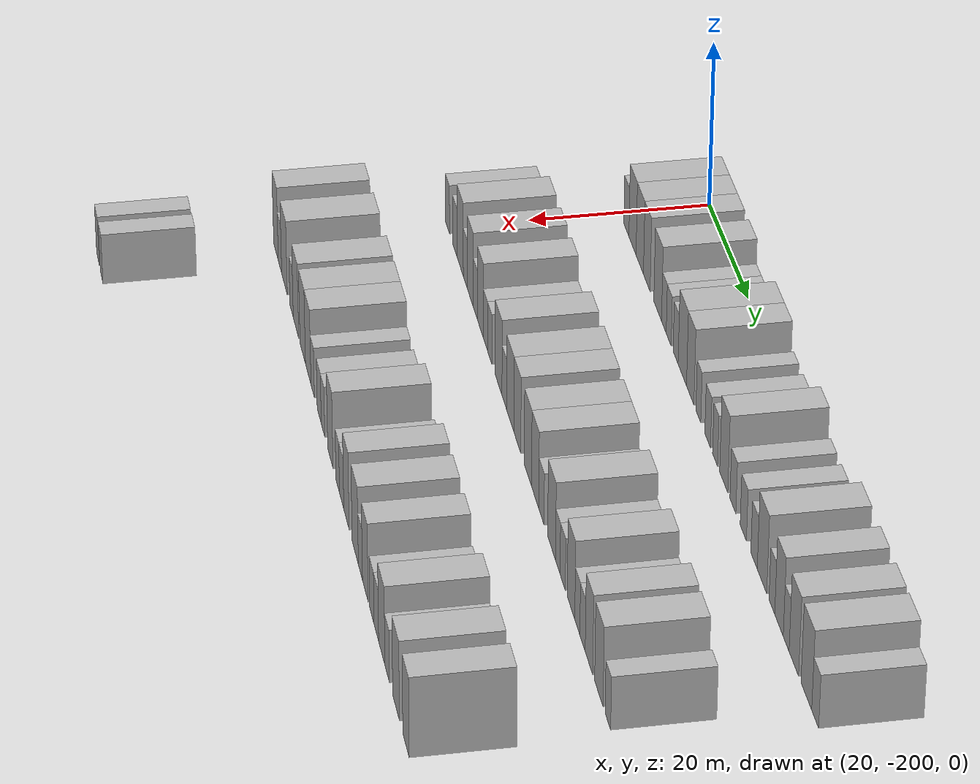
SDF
<sdf version="1.6">
 <world name="default">
  <model name="building_38">
   <static>1</static>
   <pose>25.0000 -196.1749 0 0.000000 0.000000 0.000000</pose>
   <link name="link">
    <pose>0 0 3.00 0 0 0</pose>
    <collision name="collision"><geometry><box><size>10.0000 2.8677 6.0000</size></box></geometry></collision>
    <visual name="visual">
     <cast_shadows>0</cast_shadows>
     <geometry><box><size>10.0000 2.8677 6.0000</size></box></geometry>
     <material>
      <script>
       <uri>model://HANNAS_wall/materials/scripts</uri>
       <uri>model://HANNAS_wall/materials/textures</uri>
       <name>vrc/HANNAS_wall</name>
      </script>
     </material>
    </visual>
   </link>
  </model>
  <model name="building_39">
   <static>1</static>
   <pose>25.0000 -192.7549 0 0.000000 0.000000 0.000000</pose>
   <link name="link">
    <pose>0 0 4.50 0 0 0</pose>
    <collision name="collision"><geometry><box><size>10.0000 3.9723 9.0000</size></box></geometry></collision>
    <visual name="visual">
     <cast_shadows>0</cast_shadows>
     <geometry><box><size>10.0000 3.9723 9.0000</size></box></geometry>
     <material>
      <script>
       <uri>model://HANNAS_wall/materials/scripts</uri>
       <uri>model://HANNAS_wall/materials/textures</uri>
       <name>vrc/HANNAS_wall</name>
      </script>
     </material>
    </visual>
   </link>
  </model>
  <model name="building_40">
   <static>1</static>
   <pose>25.0000 -188.7451 0 0.000000 0.000000 0.000000</pose>
   <link name="link">
    <pose>0 0 4.50 0 0 0</pose>
    <collision name="collision"><geometry><box><size>10.0000 4.0472 9.0000</size></box></geometry></collision>
    <visual name="visual">
     <cast_shadows>0</cast_shadows>
     <geometry><box><size>10.0000 4.0472 9.0000</size></box></geometry>
     <material>
      <script>
       <uri>model://HANNAS_wall/materials/scripts</uri>
       <uri>model://HANNAS_wall/materials/textures</uri>
       <name>vrc/HANNAS_wall</name>
      </script>
     </material>
    </visual>
   </link>
  </model>
  <model name="building_41">
   <static>1</static>
   <pose>25.0000 -184.9194 0 0.000000 0.000000 0.000000</pose>
   <link name="link">
    <pose>0 0 4.50 0 0 0</pose>
    <collision name="collision"><geometry><box><size>10.0000 3.6041 9.0000</size></box></geometry></collision>
    <visual name="visual">
     <cast_shadows>0</cast_shadows>
     <geometry><box><size>10.0000 3.6041 9.0000</size></box></geometry>
     <material>
      <script>
       <uri>model://HANNAS_wall/materials/scripts</uri>
       <uri>model://HANNAS_wall/materials/textures</uri>
       <name>vrc/HANNAS_wall</name>
      </script>
     </material>
    </visual>
   </link>
  </model>
  <model name="building_42">
   <static>1</static>
   <pose>25.0000 -179.0728 0 0.000000 0.000000 0.000000</pose>
   <link name="link">
    <pose>0 0 4.50 0 0 0</pose>
    <collision name="collision"><geometry><box><size>10.0000 4.0892 9.0000</size></box></geometry></collision>
    <visual name="visual">
     <cast_shadows>0</cast_shadows>
     <geometry><box><size>10.0000 4.0892 9.0000</size></box></geometry>
     <material>
      <script>
       <uri>model://HANNAS_wall/materials/scripts</uri>
       <uri>model://HANNAS_wall/materials/textures</uri>
       <name>vrc/HANNAS_wall</name>
      </script>
     </material>
    </visual>
   </link>
  </model>
  <model name="building_43">
   <static>1</static>
   <pose>25.0000 -175.7907 0 0.000000 0.000000 0.000000</pose>
   <link name="link">
    <pose>0 0 3.00 0 0 0</pose>
    <collision name="collision"><geometry><box><size>10.0000 2.4751 6.0000</size></box></geometry></collision>
    <visual name="visual">
     <cast_shadows>0</cast_shadows>
     <geometry><box><size>10.0000 2.4751 6.0000</size></box></geometry>
     <material>
      <script>
       <uri>model://HANNAS_wall/materials/scripts</uri>
       <uri>model://HANNAS_wall/materials/textures</uri>
       <name>vrc/HANNAS_wall</name>
      </script>
     </material>
    </visual>
   </link>
  </model>
  <model name="building_44">
   <static>1</static>
   <pose>25.0000 -173.2570 0 0.000000 0.000000 0.000000</pose>
   <link name="link">
    <pose>0 0 3.00 0 0 0</pose>
    <collision name="collision"><geometry><box><size>10.0000 2.5922 6.0000</size></box></geometry></collision>
    <visual name="visual">
     <cast_shadows>0</cast_shadows>
     <geometry><box><size>10.0000 2.5922 6.0000</size></box></geometry>
     <material>
      <script>
       <uri>model://HANNAS_wall/materials/scripts</uri>
       <uri>model://HANNAS_wall/materials/textures</uri>
       <name>vrc/HANNAS_wall</name>
      </script>
     </material>
    </visual>
   </link>
  </model>
  <model name="building_45">
   <static>1</static>
   <pose>25.0000 -169.6675 0 0.000000 0.000000 0.000000</pose>
   <link name="link">
    <pose>0 0 3.00 0 0 0</pose>
    <collision name="collision"><geometry><box><size>10.0000 2.5868 6.0000</size></box></geometry></collision>
    <visual name="visual">
     <cast_shadows>0</cast_shadows>
     <geometry><box><size>10.0000 2.5868 6.0000</size></box></geometry>
     <material>
      <script>
       <uri>model://HANNAS_wall/materials/scripts</uri>
       <uri>model://HANNAS_wall/materials/textures</uri>
       <name>vrc/HANNAS_wall</name>
      </script>
     </material>
    </visual>
   </link>
  </model>
  <model name="building_46">
   <static>1</static>
   <pose>25.0000 -166.2301 0 0.000000 0.000000 0.000000</pose>
   <link name="link">
    <pose>0 0 4.50 0 0 0</pose>
    <collision name="collision"><geometry><box><size>10.0000 4.2879 9.0000</size></box></geometry></collision>
    <visual name="visual">
     <cast_shadows>0</cast_shadows>
     <geometry><box><size>10.0000 4.2879 9.0000</size></box></geometry>
     <material>
      <script>
       <uri>model://HANNAS_wall/materials/scripts</uri>
       <uri>model://HANNAS_wall/materials/textures</uri>
       <name>vrc/HANNAS_wall</name>
      </script>
     </material>
    </visual>
   </link>
  </model>
  <model name="building_47">
   <static>1</static>
   <pose>25.0000 -162.2319 0 0.000000 0.000000 0.000000</pose>
   <link name="link">
    <pose>0 0 4.50 0 0 0</pose>
    <collision name="collision"><geometry><box><size>10.0000 3.7085 9.0000</size></box></geometry></collision>
    <visual name="visual">
     <cast_shadows>0</cast_shadows>
     <geometry><box><size>10.0000 3.7085 9.0000</size></box></geometry>
     <material>
      <script>
       <uri>model://HANNAS_wall/materials/scripts</uri>
       <uri>model://HANNAS_wall/materials/textures</uri>
       <name>vrc/HANNAS_wall</name>
      </script>
     </material>
    </visual>
   </link>
  </model>
  <model name="building_48">
   <static>1</static>
   <pose>25.0000 -158.1756 0 0.000000 0.000000 0.000000</pose>
   <link name="link">
    <pose>0 0 3.00 0 0 0</pose>
    <collision name="collision"><geometry><box><size>10.0000 2.4042 6.0000</size></box></geometry></collision>
    <visual name="visual">
     <cast_shadows>0</cast_shadows>
     <geometry><box><size>10.0000 2.4042 6.0000</size></box></geometry>
     <material>
      <script>
       <uri>model://HANNAS_wall/materials/scripts</uri>
       <uri>model://HANNAS_wall/materials/textures</uri>
       <name>vrc/HANNAS_wall</name>
      </script>
     </material>
    </visual>
   </link>
  </model>
  <model name="building_49">
   <static>1</static>
   <pose>25.0000 -153.5953 0 0.000000 0.000000 0.000000</pose>
   <link name="link">
    <pose>0 0 3.00 0 0 0</pose>
    <collision name="collision"><geometry><box><size>10.0000 2.7563 6.0000</size></box></geometry></collision>
    <visual name="visual">
     <cast_shadows>0</cast_shadows>
     <geometry><box><size>10.0000 2.7563 6.0000</size></box></geometry>
     <material>
      <script>
       <uri>model://HANNAS_wall/materials/scripts</uri>
       <uri>model://HANNAS_wall/materials/textures</uri>
       <name>vrc/HANNAS_wall</name>
      </script>
     </material>
    </visual>
   </link>
  </model>
  <model name="building_50">
   <static>1</static>
   <pose>25.0000 -149.9936 0 0.000000 0.000000 0.000000</pose>
   <link name="link">
    <pose>0 0 3.00 0 0 0</pose>
    <collision name="collision"><geometry><box><size>10.0000 2.4472 6.0000</size></box></geometry></collision>
    <visual name="visual">
     <cast_shadows>0</cast_shadows>
     <geometry><box><size>10.0000 2.4472 6.0000</size></box></geometry>
     <material>
      <script>
       <uri>model://HANNAS_wall/materials/scripts</uri>
       <uri>model://HANNAS_wall/materials/textures</uri>
       <name>vrc/HANNAS_wall</name>
      </script>
     </material>
    </visual>
   </link>
  </model>
  <model name="building_51">
   <static>1</static>
   <pose>25.0000 -145.8322 0 0.000000 0.000000 0.000000</pose>
   <link name="link">
    <pose>0 0 4.50 0 0 0</pose>
    <collision name="collision"><geometry><box><size>10.0000 3.8758 9.0000</size></box></geometry></collision>
    <visual name="visual">
     <cast_shadows>0</cast_shadows>
     <geometry><box><size>10.0000 3.8758 9.0000</size></box></geometry>
     <material>
      <script>
       <uri>model://HANNAS_wall/materials/scripts</uri>
       <uri>model://HANNAS_wall/materials/textures</uri>
       <name>vrc/HANNAS_wall</name>
      </script>
     </material>
    </visual>
   </link>
  </model>
  <model name="building_52">
   <static>1</static>
   <pose>25.0000 -141.5066 0 0.000000 0.000000 0.000000</pose>
   <link name="link">
    <pose>0 0 3.00 0 0 0</pose>
    <collision name="collision"><geometry><box><size>10.0000 2.7752 6.0000</size></box></geometry></collision>
    <visual name="visual">
     <cast_shadows>0</cast_shadows>
     <geometry><box><size>10.0000 2.7752 6.0000</size></box></geometry>
     <material>
      <script>
       <uri>model://HANNAS_wall/materials/scripts</uri>
       <uri>model://HANNAS_wall/materials/textures</uri>
       <name>vrc/HANNAS_wall</name>
      </script>
     </material>
    </visual>
   </link>
  </model>
  <model name="building_53">
   <static>1</static>
   <pose>25.0000 -136.6721 0 0.000000 0.000000 0.000000</pose>
   <link name="link">
    <pose>0 0 3.00 0 0 0</pose>
    <collision name="collision"><geometry><box><size>10.0000 2.8939 6.0000</size></box></geometry></collision>
    <visual name="visual">
     <cast_shadows>0</cast_shadows>
     <geometry><box><size>10.0000 2.8939 6.0000</size></box></geometry>
     <material>
      <script>
       <uri>model://HANNAS_wall/materials/scripts</uri>
       <uri>model://HANNAS_wall/materials/textures</uri>
       <name>vrc/HANNAS_wall</name>
      </script>
     </material>
    </visual>
   </link>
  </model>
  <model name="building_54">
   <static>1</static>
   <pose>25.0000 -131.7650 0 0.000000 0.000000 0.000000</pose>
   <link name="link">
    <pose>0 0 3.00 0 0 0</pose>
    <collision name="collision"><geometry><box><size>10.0000 2.9203 6.0000</size></box></geometry></collision>
    <visual name="visual">
     <cast_shadows>0</cast_shadows>
     <geometry><box><size>10.0000 2.9203 6.0000</size></box></geometry>
     <material>
      <script>
       <uri>model://HANNAS_wall/materials/scripts</uri>
       <uri>model://HANNAS_wall/materials/textures</uri>
       <name>vrc/HANNAS_wall</name>
      </script>
     </material>
    </visual>
   </link>
  </model>
  <model name="building_55">
   <static>1</static>
   <pose>25.0000 -128.1804 0 0.000000 0.000000 0.000000</pose>
   <link name="link">
    <pose>0 0 4.50 0 0 0</pose>
    <collision name="collision"><geometry><box><size>10.0000 4.2487 9.0000</size></box></geometry></collision>
    <visual name="visual">
     <cast_shadows>0</cast_shadows>
     <geometry><box><size>10.0000 4.2487 9.0000</size></box></geometry>
     <material>
      <script>
       <uri>model://HANNAS_wall/materials/scripts</uri>
       <uri>model://HANNAS_wall/materials/textures</uri>
       <name>vrc/HANNAS_wall</name>
      </script>
     </material>
    </visual>
   </link>
  </model>
  <model name="building_56">
   <static>1</static>
   <pose>25.0000 -123.7981 0 0.000000 0.000000 0.000000</pose>
   <link name="link">
    <pose>0 0 3.00 0 0 0</pose>
    <collision name="collision"><geometry><box><size>10.0000 2.5161 6.0000</size></box></geometry></collision>
    <visual name="visual">
     <cast_shadows>0</cast_shadows>
     <geometry><box><size>10.0000 2.5161 6.0000</size></box></geometry>
     <material>
      <script>
       <uri>model://HANNAS_wall/materials/scripts</uri>
       <uri>model://HANNAS_wall/materials/textures</uri>
       <name>vrc/HANNAS_wall</name>
      </script>
     </material>
    </visual>
   </link>
  </model>
  <model name="building_57">
   <static>1</static>
   <pose>25.0000 -120.6782 0 0.000000 0.000000 0.000000</pose>
   <link name="link">
    <pose>0 0 4.50 0 0 0</pose>
    <collision name="collision"><geometry><box><size>10.0000 3.7236 9.0000</size></box></geometry></collision>
    <visual name="visual">
     <cast_shadows>0</cast_shadows>
     <geometry><box><size>10.0000 3.7236 9.0000</size></box></geometry>
     <material>
      <script>
       <uri>model://HANNAS_wall/materials/scripts</uri>
       <uri>model://HANNAS_wall/materials/textures</uri>
       <name>vrc/HANNAS_wall</name>
      </script>
     </material>
    </visual>
   </link>
  </model>
  <model name="building_58">
   <static>1</static>
   <pose>25.0000 -117.5610 0 0.000000 0.000000 0.000000</pose>
   <link name="link">
    <pose>0 0 3.00 0 0 0</pose>
    <collision name="collision"><geometry><box><size>10.0000 2.5109 6.0000</size></box></geometry></collision>
    <visual name="visual">
     <cast_shadows>0</cast_shadows>
     <geometry><box><size>10.0000 2.5109 6.0000</size></box></geometry>
     <material>
      <script>
       <uri>model://HANNAS_wall/materials/scripts</uri>
       <uri>model://HANNAS_wall/materials/textures</uri>
       <name>vrc/HANNAS_wall</name>
      </script>
     </material>
    </visual>
   </link>
  </model>
  <model name="building_59">
   <static>1</static>
   <pose>25.0000 -114.2833 0 0.000000 0.000000 0.000000</pose>
   <link name="link">
    <pose>0 0 4.50 0 0 0</pose>
    <collision name="collision"><geometry><box><size>10.0000 4.0446 9.0000</size></box></geometry></collision>
    <visual name="visual">
     <cast_shadows>0</cast_shadows>
     <geometry><box><size>10.0000 4.0446 9.0000</size></box></geometry>
     <material>
      <script>
       <uri>model://HANNAS_wall/materials/scripts</uri>
       <uri>model://HANNAS_wall/materials/textures</uri>
       <name>vrc/HANNAS_wall</name>
      </script>
     </material>
    </visual>
   </link>
  </model>
  <model name="building_60">
   <static>1</static>
   <pose>25.0000 -109.0152 0 0.000000 0.000000 0.000000</pose>
   <link name="link">
    <pose>0 0 4.50 0 0 0</pose>
    <collision name="collision"><geometry><box><size>10.0000 4.4915 9.0000</size></box></geometry></collision>
    <visual name="visual">
     <cast_shadows>0</cast_shadows>
     <geometry><box><size>10.0000 4.4915 9.0000</size></box></geometry>
     <material>
      <script>
       <uri>model://HANNAS_wall/materials/scripts</uri>
       <uri>model://HANNAS_wall/materials/textures</uri>
       <name>vrc/HANNAS_wall</name>
      </script>
     </material>
    </visual>
   </link>
  </model>
  <model name="building_61">
   <static>1</static>
   <pose>25.0000 -105.3394 0 0.000000 0.000000 0.000000</pose>
   <link name="link">
    <pose>0 0 3.00 0 0 0</pose>
    <collision name="collision"><geometry><box><size>10.0000 2.8602 6.0000</size></box></geometry></collision>
    <visual name="visual">
     <cast_shadows>0</cast_shadows>
     <geometry><box><size>10.0000 2.8602 6.0000</size></box></geometry>
     <material>
      <script>
       <uri>model://HANNAS_wall/materials/scripts</uri>
       <uri>model://HANNAS_wall/materials/textures</uri>
       <name>vrc/HANNAS_wall</name>
      </script>
     </material>
    </visual>
   </link>
  </model>
  <model name="building_211">
   <static>1</static>
   <pose>44.0000 -199.8875 0 0.000000 0.000000 0.000000</pose>
   <link name="link">
    <pose>0 0 3.00 0 0 0</pose>
    <collision name="collision"><geometry><box><size>10.0000 2.6153 6.0000</size></box></geometry></collision>
    <visual name="visual">
     <cast_shadows>0</cast_shadows>
     <geometry><box><size>10.0000 2.6153 6.0000</size></box></geometry>
     <material>
      <script>
       <uri>model://HANNAS_wall/materials/scripts</uri>
       <uri>model://HANNAS_wall/materials/textures</uri>
       <name>vrc/HANNAS_wall</name>
      </script>
     </material>
    </visual>
   </link>
  </model>
  <model name="building_212">
   <static>1</static>
   <pose>44.0000 -195.1060 0 0.000000 0.000000 0.000000</pose>
   <link name="link">
    <pose>0 0 3.00 0 0 0</pose>
    <collision name="collision"><geometry><box><size>10.0000 2.9477 6.0000</size></box></geometry></collision>
    <visual name="visual">
     <cast_shadows>0</cast_shadows>
     <geometry><box><size>10.0000 2.9477 6.0000</size></box></geometry>
     <material>
      <script>
       <uri>model://HANNAS_wall/materials/scripts</uri>
       <uri>model://HANNAS_wall/materials/textures</uri>
       <name>vrc/HANNAS_wall</name>
      </script>
     </material>
    </visual>
   </link>
  </model>
  <model name="building_213">
   <static>1</static>
   <pose>44.0000 -191.5765 0 0.000000 0.000000 0.000000</pose>
   <link name="link">
    <pose>0 0 4.50 0 0 0</pose>
    <collision name="collision"><geometry><box><size>10.0000 4.1114 9.0000</size></box></geometry></collision>
    <visual name="visual">
     <cast_shadows>0</cast_shadows>
     <geometry><box><size>10.0000 4.1114 9.0000</size></box></geometry>
     <material>
      <script>
       <uri>model://HANNAS_wall/materials/scripts</uri>
       <uri>model://HANNAS_wall/materials/textures</uri>
       <name>vrc/HANNAS_wall</name>
      </script>
     </material>
    </visual>
   </link>
  </model>
  <model name="building_214">
   <static>1</static>
   <pose>44.0000 -188.2225 0 0.000000 0.000000 0.000000</pose>
   <link name="link">
    <pose>0 0 3.00 0 0 0</pose>
    <collision name="collision"><geometry><box><size>10.0000 2.5965 6.0000</size></box></geometry></collision>
    <visual name="visual">
     <cast_shadows>0</cast_shadows>
     <geometry><box><size>10.0000 2.5965 6.0000</size></box></geometry>
     <material>
      <script>
       <uri>model://HANNAS_wall/materials/scripts</uri>
       <uri>model://HANNAS_wall/materials/textures</uri>
       <name>vrc/HANNAS_wall</name>
      </script>
     </material>
    </visual>
   </link>
  </model>
  <model name="building_215">
   <static>1</static>
   <pose>44.0000 -185.0494 0 0.000000 0.000000 0.000000</pose>
   <link name="link">
    <pose>0 0 4.50 0 0 0</pose>
    <collision name="collision"><geometry><box><size>10.0000 3.7498 9.0000</size></box></geometry></collision>
    <visual name="visual">
     <cast_shadows>0</cast_shadows>
     <geometry><box><size>10.0000 3.7498 9.0000</size></box></geometry>
     <material>
      <script>
       <uri>model://HANNAS_wall/materials/scripts</uri>
       <uri>model://HANNAS_wall/materials/textures</uri>
       <name>vrc/HANNAS_wall</name>
      </script>
     </material>
    </visual>
   </link>
  </model>
  <model name="building_216">
   <static>1</static>
   <pose>44.0000 -181.8556 0 0.000000 0.000000 0.000000</pose>
   <link name="link">
    <pose>0 0 3.00 0 0 0</pose>
    <collision name="collision"><geometry><box><size>10.0000 2.6378 6.0000</size></box></geometry></collision>
    <visual name="visual">
     <cast_shadows>0</cast_shadows>
     <geometry><box><size>10.0000 2.6378 6.0000</size></box></geometry>
     <material>
      <script>
       <uri>model://HANNAS_wall/materials/scripts</uri>
       <uri>model://HANNAS_wall/materials/textures</uri>
       <name>vrc/HANNAS_wall</name>
      </script>
     </material>
    </visual>
   </link>
  </model>
  <model name="building_217">
   <static>1</static>
   <pose>44.0000 -178.6757 0 0.000000 0.000000 0.000000</pose>
   <link name="link">
    <pose>0 0 4.50 0 0 0</pose>
    <collision name="collision"><geometry><box><size>10.0000 3.7222 9.0000</size></box></geometry></collision>
    <visual name="visual">
     <cast_shadows>0</cast_shadows>
     <geometry><box><size>10.0000 3.7222 9.0000</size></box></geometry>
     <material>
      <script>
       <uri>model://HANNAS_wall/materials/scripts</uri>
       <uri>model://HANNAS_wall/materials/textures</uri>
       <name>vrc/HANNAS_wall</name>
      </script>
     </material>
    </visual>
   </link>
  </model>
  <model name="building_218">
   <static>1</static>
   <pose>44.0000 -175.5180 0 0.000000 0.000000 0.000000</pose>
   <link name="link">
    <pose>0 0 3.00 0 0 0</pose>
    <collision name="collision"><geometry><box><size>10.0000 2.5931 6.0000</size></box></geometry></collision>
    <visual name="visual">
     <cast_shadows>0</cast_shadows>
     <geometry><box><size>10.0000 2.5931 6.0000</size></box></geometry>
     <material>
      <script>
       <uri>model://HANNAS_wall/materials/scripts</uri>
       <uri>model://HANNAS_wall/materials/textures</uri>
       <name>vrc/HANNAS_wall</name>
      </script>
     </material>
    </visual>
   </link>
  </model>
  <model name="building_219">
   <static>1</static>
   <pose>44.0000 -172.8881 0 0.000000 0.000000 0.000000</pose>
   <link name="link">
    <pose>0 0 3.00 0 0 0</pose>
    <collision name="collision"><geometry><box><size>10.0000 2.6668 6.0000</size></box></geometry></collision>
    <visual name="visual">
     <cast_shadows>0</cast_shadows>
     <geometry><box><size>10.0000 2.6668 6.0000</size></box></geometry>
     <material>
      <script>
       <uri>model://HANNAS_wall/materials/scripts</uri>
       <uri>model://HANNAS_wall/materials/textures</uri>
       <name>vrc/HANNAS_wall</name>
      </script>
     </material>
    </visual>
   </link>
  </model>
  <model name="building_220">
   <static>1</static>
   <pose>44.0000 -167.5113 0 0.000000 0.000000 0.000000</pose>
   <link name="link">
    <pose>0 0 4.50 0 0 0</pose>
    <collision name="collision"><geometry><box><size>10.0000 4.0867 9.0000</size></box></geometry></collision>
    <visual name="visual">
     <cast_shadows>0</cast_shadows>
     <geometry><box><size>10.0000 4.0867 9.0000</size></box></geometry>
     <material>
      <script>
       <uri>model://HANNAS_wall/materials/scripts</uri>
       <uri>model://HANNAS_wall/materials/textures</uri>
       <name>vrc/HANNAS_wall</name>
      </script>
     </material>
    </visual>
   </link>
  </model>
  <model name="building_221">
   <static>1</static>
   <pose>44.0000 -164.0700 0 0.000000 0.000000 0.000000</pose>
   <link name="link">
    <pose>0 0 3.00 0 0 0</pose>
    <collision name="collision"><geometry><box><size>10.0000 2.7959 6.0000</size></box></geometry></collision>
    <visual name="visual">
     <cast_shadows>0</cast_shadows>
     <geometry><box><size>10.0000 2.7959 6.0000</size></box></geometry>
     <material>
      <script>
       <uri>model://HANNAS_wall/materials/scripts</uri>
       <uri>model://HANNAS_wall/materials/textures</uri>
       <name>vrc/HANNAS_wall</name>
      </script>
     </material>
    </visual>
   </link>
  </model>
  <model name="building_222">
   <static>1</static>
   <pose>44.0000 -160.5124 0 0.000000 0.000000 0.000000</pose>
   <link name="link">
    <pose>0 0 4.50 0 0 0</pose>
    <collision name="collision"><geometry><box><size>10.0000 4.3194 9.0000</size></box></geometry></collision>
    <visual name="visual">
     <cast_shadows>0</cast_shadows>
     <geometry><box><size>10.0000 4.3194 9.0000</size></box></geometry>
     <material>
      <script>
       <uri>model://HANNAS_wall/materials/scripts</uri>
       <uri>model://HANNAS_wall/materials/textures</uri>
       <name>vrc/HANNAS_wall</name>
      </script>
     </material>
    </visual>
   </link>
  </model>
  <model name="building_223">
   <static>1</static>
   <pose>44.0000 -156.3824 0 0.000000 0.000000 0.000000</pose>
   <link name="link">
    <pose>0 0 4.50 0 0 0</pose>
    <collision name="collision"><geometry><box><size>10.0000 3.9405 9.0000</size></box></geometry></collision>
    <visual name="visual">
     <cast_shadows>0</cast_shadows>
     <geometry><box><size>10.0000 3.9405 9.0000</size></box></geometry>
     <material>
      <script>
       <uri>model://HANNAS_wall/materials/scripts</uri>
       <uri>model://HANNAS_wall/materials/textures</uri>
       <name>vrc/HANNAS_wall</name>
      </script>
     </material>
    </visual>
   </link>
  </model>
  <model name="building_224">
   <static>1</static>
   <pose>44.0000 -150.3440 0 0.000000 0.000000 0.000000</pose>
   <link name="link">
    <pose>0 0 4.50 0 0 0</pose>
    <collision name="collision"><geometry><box><size>10.0000 4.1362 9.0000</size></box></geometry></collision>
    <visual name="visual">
     <cast_shadows>0</cast_shadows>
     <geometry><box><size>10.0000 4.1362 9.0000</size></box></geometry>
     <material>
      <script>
       <uri>model://HANNAS_wall/materials/scripts</uri>
       <uri>model://HANNAS_wall/materials/textures</uri>
       <name>vrc/HANNAS_wall</name>
      </script>
     </material>
    </visual>
   </link>
  </model>
  <model name="building_225">
   <static>1</static>
   <pose>44.0000 -146.2599 0 0.000000 0.000000 0.000000</pose>
   <link name="link">
    <pose>0 0 4.50 0 0 0</pose>
    <collision name="collision"><geometry><box><size>10.0000 4.0321 9.0000</size></box></geometry></collision>
    <visual name="visual">
     <cast_shadows>0</cast_shadows>
     <geometry><box><size>10.0000 4.0321 9.0000</size></box></geometry>
     <material>
      <script>
       <uri>model://HANNAS_wall/materials/scripts</uri>
       <uri>model://HANNAS_wall/materials/textures</uri>
       <name>vrc/HANNAS_wall</name>
      </script>
     </material>
    </visual>
   </link>
  </model>
  <model name="building_226">
   <static>1</static>
   <pose>44.0000 -142.7805 0 0.000000 0.000000 0.000000</pose>
   <link name="link">
    <pose>0 0 3.00 0 0 0</pose>
    <collision name="collision"><geometry><box><size>10.0000 2.9266 6.0000</size></box></geometry></collision>
    <visual name="visual">
     <cast_shadows>0</cast_shadows>
     <geometry><box><size>10.0000 2.9266 6.0000</size></box></geometry>
     <material>
      <script>
       <uri>model://HANNAS_wall/materials/scripts</uri>
       <uri>model://HANNAS_wall/materials/textures</uri>
       <name>vrc/HANNAS_wall</name>
      </script>
     </material>
    </visual>
   </link>
  </model>
  <model name="building_227">
   <static>1</static>
   <pose>44.0000 -137.1943 0 0.000000 0.000000 0.000000</pose>
   <link name="link">
    <pose>0 0 4.50 0 0 0</pose>
    <collision name="collision"><geometry><box><size>10.0000 4.2459 9.0000</size></box></geometry></collision>
    <visual name="visual">
     <cast_shadows>0</cast_shadows>
     <geometry><box><size>10.0000 4.2459 9.0000</size></box></geometry>
     <material>
      <script>
       <uri>model://HANNAS_wall/materials/scripts</uri>
       <uri>model://HANNAS_wall/materials/textures</uri>
       <name>vrc/HANNAS_wall</name>
      </script>
     </material>
    </visual>
   </link>
  </model>
  <model name="building_228">
   <static>1</static>
   <pose>44.0000 -133.8521 0 0.000000 0.000000 0.000000</pose>
   <link name="link">
    <pose>0 0 3.00 0 0 0</pose>
    <collision name="collision"><geometry><box><size>10.0000 2.4383 6.0000</size></box></geometry></collision>
    <visual name="visual">
     <cast_shadows>0</cast_shadows>
     <geometry><box><size>10.0000 2.4383 6.0000</size></box></geometry>
     <material>
      <script>
       <uri>model://HANNAS_wall/materials/scripts</uri>
       <uri>model://HANNAS_wall/materials/textures</uri>
       <name>vrc/HANNAS_wall</name>
      </script>
     </material>
    </visual>
   </link>
  </model>
  <model name="building_229">
   <static>1</static>
   <pose>44.0000 -131.2390 0 0.000000 0.000000 0.000000</pose>
   <link name="link">
    <pose>0 0 3.00 0 0 0</pose>
    <collision name="collision"><geometry><box><size>10.0000 2.7880 6.0000</size></box></geometry></collision>
    <visual name="visual">
     <cast_shadows>0</cast_shadows>
     <geometry><box><size>10.0000 2.7880 6.0000</size></box></geometry>
     <material>
      <script>
       <uri>model://HANNAS_wall/materials/scripts</uri>
       <uri>model://HANNAS_wall/materials/textures</uri>
       <name>vrc/HANNAS_wall</name>
      </script>
     </material>
    </visual>
   </link>
  </model>
  <model name="building_230">
   <static>1</static>
   <pose>44.0000 -126.8663 0 0.000000 0.000000 0.000000</pose>
   <link name="link">
    <pose>0 0 4.50 0 0 0</pose>
    <collision name="collision"><geometry><box><size>10.0000 3.9574 9.0000</size></box></geometry></collision>
    <visual name="visual">
     <cast_shadows>0</cast_shadows>
     <geometry><box><size>10.0000 3.9574 9.0000</size></box></geometry>
     <material>
      <script>
       <uri>model://HANNAS_wall/materials/scripts</uri>
       <uri>model://HANNAS_wall/materials/textures</uri>
       <name>vrc/HANNAS_wall</name>
      </script>
     </material>
    </visual>
   </link>
  </model>
  <model name="building_231">
   <static>1</static>
   <pose>44.0000 -123.5836 0 0.000000 0.000000 0.000000</pose>
   <link name="link">
    <pose>0 0 3.00 0 0 0</pose>
    <collision name="collision"><geometry><box><size>10.0000 2.6080 6.0000</size></box></geometry></collision>
    <visual name="visual">
     <cast_shadows>0</cast_shadows>
     <geometry><box><size>10.0000 2.6080 6.0000</size></box></geometry>
     <material>
      <script>
       <uri>model://HANNAS_wall/materials/scripts</uri>
       <uri>model://HANNAS_wall/materials/textures</uri>
       <name>vrc/HANNAS_wall</name>
      </script>
     </material>
    </visual>
   </link>
  </model>
  <model name="building_232">
   <static>1</static>
   <pose>44.0000 -120.9050 0 0.000000 0.000000 0.000000</pose>
   <link name="link">
    <pose>0 0 3.00 0 0 0</pose>
    <collision name="collision"><geometry><box><size>10.0000 2.7492 6.0000</size></box></geometry></collision>
    <visual name="visual">
     <cast_shadows>0</cast_shadows>
     <geometry><box><size>10.0000 2.7492 6.0000</size></box></geometry>
     <material>
      <script>
       <uri>model://HANNAS_wall/materials/scripts</uri>
       <uri>model://HANNAS_wall/materials/textures</uri>
       <name>vrc/HANNAS_wall</name>
      </script>
     </material>
    </visual>
   </link>
  </model>
  <model name="building_233">
   <static>1</static>
   <pose>44.0000 -117.6449 0 0.000000 0.000000 0.000000</pose>
   <link name="link">
    <pose>0 0 4.50 0 0 0</pose>
    <collision name="collision"><geometry><box><size>10.0000 3.7710 9.0000</size></box></geometry></collision>
    <visual name="visual">
     <cast_shadows>0</cast_shadows>
     <geometry><box><size>10.0000 3.7710 9.0000</size></box></geometry>
     <material>
      <script>
       <uri>model://HANNAS_wall/materials/scripts</uri>
       <uri>model://HANNAS_wall/materials/textures</uri>
       <name>vrc/HANNAS_wall</name>
      </script>
     </material>
    </visual>
   </link>
  </model>
  <model name="building_234">
   <static>1</static>
   <pose>44.0000 -112.6689 0 0.000000 0.000000 0.000000</pose>
   <link name="link">
    <pose>0 0 4.50 0 0 0</pose>
    <collision name="collision"><geometry><box><size>10.0000 4.1811 9.0000</size></box></geometry></collision>
    <visual name="visual">
     <cast_shadows>0</cast_shadows>
     <geometry><box><size>10.0000 4.1811 9.0000</size></box></geometry>
     <material>
      <script>
       <uri>model://HANNAS_wall/materials/scripts</uri>
       <uri>model://HANNAS_wall/materials/textures</uri>
       <name>vrc/HANNAS_wall</name>
      </script>
     </material>
    </visual>
   </link>
  </model>
  <model name="building_235">
   <static>1</static>
   <pose>44.0000 -108.2200 0 0.000000 0.000000 0.000000</pose>
   <link name="link">
    <pose>0 0 3.00 0 0 0</pose>
    <collision name="collision"><geometry><box><size>10.0000 2.7166 6.0000</size></box></geometry></collision>
    <visual name="visual">
     <cast_shadows>0</cast_shadows>
     <geometry><box><size>10.0000 2.7166 6.0000</size></box></geometry>
     <material>
      <script>
       <uri>model://HANNAS_wall/materials/scripts</uri>
       <uri>model://HANNAS_wall/materials/textures</uri>
       <name>vrc/HANNAS_wall</name>
      </script>
     </material>
    </visual>
   </link>
  </model>
  <model name="building_381">
   <static>1</static>
   <pose>63.0000 -197.8895 0 0.000000 0.000000 0.000000</pose>
   <link name="link">
    <pose>0 0 4.50 0 0 0</pose>
    <collision name="collision"><geometry><box><size>10.0000 3.7140 9.0000</size></box></geometry></collision>
    <visual name="visual">
     <cast_shadows>0</cast_shadows>
     <geometry><box><size>10.0000 3.7140 9.0000</size></box></geometry>
     <material>
      <script>
       <uri>model://HANNAS_wall/materials/scripts</uri>
       <uri>model://HANNAS_wall/materials/textures</uri>
       <name>vrc/HANNAS_wall</name>
      </script>
     </material>
    </visual>
   </link>
  </model>
  <model name="building_382">
   <static>1</static>
   <pose>63.0000 -194.6729 0 0.000000 0.000000 0.000000</pose>
   <link name="link">
    <pose>0 0 3.00 0 0 0</pose>
    <collision name="collision"><geometry><box><size>10.0000 2.7191 6.0000</size></box></geometry></collision>
    <visual name="visual">
     <cast_shadows>0</cast_shadows>
     <geometry><box><size>10.0000 2.7191 6.0000</size></box></geometry>
     <material>
      <script>
       <uri>model://HANNAS_wall/materials/scripts</uri>
       <uri>model://HANNAS_wall/materials/textures</uri>
       <name>vrc/HANNAS_wall</name>
      </script>
     </material>
    </visual>
   </link>
  </model>
  <model name="building_383">
   <static>1</static>
   <pose>63.0000 -191.0711 0 0.000000 0.000000 0.000000</pose>
   <link name="link">
    <pose>0 0 4.50 0 0 0</pose>
    <collision name="collision"><geometry><box><size>10.0000 4.4846 9.0000</size></box></geometry></collision>
    <visual name="visual">
     <cast_shadows>0</cast_shadows>
     <geometry><box><size>10.0000 4.4846 9.0000</size></box></geometry>
     <material>
      <script>
       <uri>model://HANNAS_wall/materials/scripts</uri>
       <uri>model://HANNAS_wall/materials/textures</uri>
       <name>vrc/HANNAS_wall</name>
      </script>
     </material>
    </visual>
   </link>
  </model>
  <model name="building_384">
   <static>1</static>
   <pose>63.0000 -185.5046 0 0.000000 0.000000 0.000000</pose>
   <link name="link">
    <pose>0 0 3.00 0 0 0</pose>
    <collision name="collision"><geometry><box><size>10.0000 2.6483 6.0000</size></box></geometry></collision>
    <visual name="visual">
     <cast_shadows>0</cast_shadows>
     <geometry><box><size>10.0000 2.6483 6.0000</size></box></geometry>
     <material>
      <script>
       <uri>model://HANNAS_wall/materials/scripts</uri>
       <uri>model://HANNAS_wall/materials/textures</uri>
       <name>vrc/HANNAS_wall</name>
      </script>
     </material>
    </visual>
   </link>
  </model>
  <model name="building_385">
   <static>1</static>
   <pose>63.0000 -182.0888 0 0.000000 0.000000 0.000000</pose>
   <link name="link">
    <pose>0 0 4.50 0 0 0</pose>
    <collision name="collision"><geometry><box><size>10.0000 4.1834 9.0000</size></box></geometry></collision>
    <visual name="visual">
     <cast_shadows>0</cast_shadows>
     <geometry><box><size>10.0000 4.1834 9.0000</size></box></geometry>
     <material>
      <script>
       <uri>model://HANNAS_wall/materials/scripts</uri>
       <uri>model://HANNAS_wall/materials/textures</uri>
       <name>vrc/HANNAS_wall</name>
      </script>
     </material>
    </visual>
   </link>
  </model>
  <model name="building_386">
   <static>1</static>
   <pose>63.0000 -176.9180 0 0.000000 0.000000 0.000000</pose>
   <link name="link">
    <pose>0 0 4.50 0 0 0</pose>
    <collision name="collision"><geometry><box><size>10.0000 4.1581 9.0000</size></box></geometry></collision>
    <visual name="visual">
     <cast_shadows>0</cast_shadows>
     <geometry><box><size>10.0000 4.1581 9.0000</size></box></geometry>
     <material>
      <script>
       <uri>model://HANNAS_wall/materials/scripts</uri>
       <uri>model://HANNAS_wall/materials/textures</uri>
       <name>vrc/HANNAS_wall</name>
      </script>
     </material>
    </visual>
   </link>
  </model>
  <model name="building_387">
   <static>1</static>
   <pose>63.0000 -172.7943 0 0.000000 0.000000 0.000000</pose>
   <link name="link">
    <pose>0 0 4.50 0 0 0</pose>
    <collision name="collision"><geometry><box><size>10.0000 4.0893 9.0000</size></box></geometry></collision>
    <visual name="visual">
     <cast_shadows>0</cast_shadows>
     <geometry><box><size>10.0000 4.0893 9.0000</size></box></geometry>
     <material>
      <script>
       <uri>model://HANNAS_wall/materials/scripts</uri>
       <uri>model://HANNAS_wall/materials/textures</uri>
       <name>vrc/HANNAS_wall</name>
      </script>
     </material>
    </visual>
   </link>
  </model>
  <model name="building_388">
   <static>1</static>
   <pose>63.0000 -169.4641 0 0.000000 0.000000 0.000000</pose>
   <link name="link">
    <pose>0 0 3.00 0 0 0</pose>
    <collision name="collision"><geometry><box><size>10.0000 2.5711 6.0000</size></box></geometry></collision>
    <visual name="visual">
     <cast_shadows>0</cast_shadows>
     <geometry><box><size>10.0000 2.5711 6.0000</size></box></geometry>
     <material>
      <script>
       <uri>model://HANNAS_wall/materials/scripts</uri>
       <uri>model://HANNAS_wall/materials/textures</uri>
       <name>vrc/HANNAS_wall</name>
      </script>
     </material>
    </visual>
   </link>
  </model>
  <model name="building_389">
   <static>1</static>
   <pose>63.0000 -164.7069 0 0.000000 0.000000 0.000000</pose>
   <link name="link">
    <pose>0 0 3.00 0 0 0</pose>
    <collision name="collision"><geometry><box><size>10.0000 2.9434 6.0000</size></box></geometry></collision>
    <visual name="visual">
     <cast_shadows>0</cast_shadows>
     <geometry><box><size>10.0000 2.9434 6.0000</size></box></geometry>
     <material>
      <script>
       <uri>model://HANNAS_wall/materials/scripts</uri>
       <uri>model://HANNAS_wall/materials/textures</uri>
       <name>vrc/HANNAS_wall</name>
      </script>
     </material>
    </visual>
   </link>
  </model>
  <model name="building_390">
   <static>1</static>
   <pose>63.0000 -161.9277 0 0.000000 0.000000 0.000000</pose>
   <link name="link">
    <pose>0 0 3.00 0 0 0</pose>
    <collision name="collision"><geometry><box><size>10.0000 2.6149 6.0000</size></box></geometry></collision>
    <visual name="visual">
     <cast_shadows>0</cast_shadows>
     <geometry><box><size>10.0000 2.6149 6.0000</size></box></geometry>
     <material>
      <script>
       <uri>model://HANNAS_wall/materials/scripts</uri>
       <uri>model://HANNAS_wall/materials/textures</uri>
       <name>vrc/HANNAS_wall</name>
      </script>
     </material>
    </visual>
   </link>
  </model>
  <model name="building_391">
   <static>1</static>
   <pose>63.0000 -156.7162 0 0.000000 0.000000 0.000000</pose>
   <link name="link">
    <pose>0 0 4.50 0 0 0</pose>
    <collision name="collision"><geometry><box><size>10.0000 3.8080 9.0000</size></box></geometry></collision>
    <visual name="visual">
     <cast_shadows>0</cast_shadows>
     <geometry><box><size>10.0000 3.8080 9.0000</size></box></geometry>
     <material>
      <script>
       <uri>model://HANNAS_wall/materials/scripts</uri>
       <uri>model://HANNAS_wall/materials/textures</uri>
       <name>vrc/HANNAS_wall</name>
      </script>
     </material>
    </visual>
   </link>
  </model>
  <model name="building_392">
   <static>1</static>
   <pose>63.0000 -151.5559 0 0.000000 0.000000 0.000000</pose>
   <link name="link">
    <pose>0 0 3.00 0 0 0</pose>
    <collision name="collision"><geometry><box><size>10.0000 2.5127 6.0000</size></box></geometry></collision>
    <visual name="visual">
     <cast_shadows>0</cast_shadows>
     <geometry><box><size>10.0000 2.5127 6.0000</size></box></geometry>
     <material>
      <script>
       <uri>model://HANNAS_wall/materials/scripts</uri>
       <uri>model://HANNAS_wall/materials/textures</uri>
       <name>vrc/HANNAS_wall</name>
      </script>
     </material>
    </visual>
   </link>
  </model>
  <model name="building_393">
   <static>1</static>
   <pose>63.0000 -148.8269 0 0.000000 0.000000 0.000000</pose>
   <link name="link">
    <pose>0 0 3.00 0 0 0</pose>
    <collision name="collision"><geometry><box><size>10.0000 2.9451 6.0000</size></box></geometry></collision>
    <visual name="visual">
     <cast_shadows>0</cast_shadows>
     <geometry><box><size>10.0000 2.9451 6.0000</size></box></geometry>
     <material>
      <script>
       <uri>model://HANNAS_wall/materials/scripts</uri>
       <uri>model://HANNAS_wall/materials/textures</uri>
       <name>vrc/HANNAS_wall</name>
      </script>
     </material>
    </visual>
   </link>
  </model>
  <model name="building_394">
   <static>1</static>
   <pose>63.0000 -145.5188 0 0.000000 0.000000 0.000000</pose>
   <link name="link">
    <pose>0 0 4.50 0 0 0</pose>
    <collision name="collision"><geometry><box><size>10.0000 3.6711 9.0000</size></box></geometry></collision>
    <visual name="visual">
     <cast_shadows>0</cast_shadows>
     <geometry><box><size>10.0000 3.6711 9.0000</size></box></geometry>
     <material>
      <script>
       <uri>model://HANNAS_wall/materials/scripts</uri>
       <uri>model://HANNAS_wall/materials/textures</uri>
       <name>vrc/HANNAS_wall</name>
      </script>
     </material>
    </visual>
   </link>
  </model>
  <model name="building_395">
   <static>1</static>
   <pose>63.0000 -139.6068 0 0.000000 0.000000 0.000000</pose>
   <link name="link">
    <pose>0 0 4.50 0 0 0</pose>
    <collision name="collision"><geometry><box><size>10.0000 4.1530 9.0000</size></box></geometry></collision>
    <visual name="visual">
     <cast_shadows>0</cast_shadows>
     <geometry><box><size>10.0000 4.1530 9.0000</size></box></geometry>
     <material>
      <script>
       <uri>model://HANNAS_wall/materials/scripts</uri>
       <uri>model://HANNAS_wall/materials/textures</uri>
       <name>vrc/HANNAS_wall</name>
      </script>
     </material>
    </visual>
   </link>
  </model>
  <model name="building_396">
   <static>1</static>
   <pose>63.0000 -136.1706 0 0.000000 0.000000 0.000000</pose>
   <link name="link">
    <pose>0 0 3.00 0 0 0</pose>
    <collision name="collision"><geometry><box><size>10.0000 2.7194 6.0000</size></box></geometry></collision>
    <visual name="visual">
     <cast_shadows>0</cast_shadows>
     <geometry><box><size>10.0000 2.7194 6.0000</size></box></geometry>
     <material>
      <script>
       <uri>model://HANNAS_wall/materials/scripts</uri>
       <uri>model://HANNAS_wall/materials/textures</uri>
       <name>vrc/HANNAS_wall</name>
      </script>
     </material>
    </visual>
   </link>
  </model>
  <model name="building_397">
   <static>1</static>
   <pose>63.0000 -132.9541 0 0.000000 0.000000 0.000000</pose>
   <link name="link">
    <pose>0 0 4.50 0 0 0</pose>
    <collision name="collision"><geometry><box><size>10.0000 3.7134 9.0000</size></box></geometry></collision>
    <visual name="visual">
     <cast_shadows>0</cast_shadows>
     <geometry><box><size>10.0000 3.7134 9.0000</size></box></geometry>
     <material>
      <script>
       <uri>model://HANNAS_wall/materials/scripts</uri>
       <uri>model://HANNAS_wall/materials/textures</uri>
       <name>vrc/HANNAS_wall</name>
      </script>
     </material>
    </visual>
   </link>
  </model>
  <model name="building_398">
   <static>1</static>
   <pose>63.0000 -128.7071 0 0.000000 0.000000 0.000000</pose>
   <link name="link">
    <pose>0 0 3.00 0 0 0</pose>
    <collision name="collision"><geometry><box><size>10.0000 2.7807 6.0000</size></box></geometry></collision>
    <visual name="visual">
     <cast_shadows>0</cast_shadows>
     <geometry><box><size>10.0000 2.7807 6.0000</size></box></geometry>
     <material>
      <script>
       <uri>model://HANNAS_wall/materials/scripts</uri>
       <uri>model://HANNAS_wall/materials/textures</uri>
       <name>vrc/HANNAS_wall</name>
      </script>
     </material>
    </visual>
   </link>
  </model>
  <model name="building_399">
   <static>1</static>
   <pose>63.0000 -125.8737 0 0.000000 0.000000 0.000000</pose>
   <link name="link">
    <pose>0 0 3.00 0 0 0</pose>
    <collision name="collision"><geometry><box><size>10.0000 2.8860 6.0000</size></box></geometry></collision>
    <visual name="visual">
     <cast_shadows>0</cast_shadows>
     <geometry><box><size>10.0000 2.8860 6.0000</size></box></geometry>
     <material>
      <script>
       <uri>model://HANNAS_wall/materials/scripts</uri>
       <uri>model://HANNAS_wall/materials/textures</uri>
       <name>vrc/HANNAS_wall</name>
      </script>
     </material>
    </visual>
   </link>
  </model>
  <model name="building_400">
   <static>1</static>
   <pose>63.0000 -122.4441 0 0.000000 0.000000 0.000000</pose>
   <link name="link">
    <pose>0 0 4.50 0 0 0</pose>
    <collision name="collision"><geometry><box><size>10.0000 3.9731 9.0000</size></box></geometry></collision>
    <visual name="visual">
     <cast_shadows>0</cast_shadows>
     <geometry><box><size>10.0000 3.9731 9.0000</size></box></geometry>
     <material>
      <script>
       <uri>model://HANNAS_wall/materials/scripts</uri>
       <uri>model://HANNAS_wall/materials/textures</uri>
       <name>vrc/HANNAS_wall</name>
      </script>
     </material>
    </visual>
   </link>
  </model>
  <model name="building_401">
   <static>1</static>
   <pose>63.0000 -119.0664 0 0.000000 0.000000 0.000000</pose>
   <link name="link">
    <pose>0 0 3.00 0 0 0</pose>
    <collision name="collision"><geometry><box><size>10.0000 2.7824 6.0000</size></box></geometry></collision>
    <visual name="visual">
     <cast_shadows>0</cast_shadows>
     <geometry><box><size>10.0000 2.7824 6.0000</size></box></geometry>
     <material>
      <script>
       <uri>model://HANNAS_wall/materials/scripts</uri>
       <uri>model://HANNAS_wall/materials/textures</uri>
       <name>vrc/HANNAS_wall</name>
      </script>
     </material>
    </visual>
   </link>
  </model>
  <model name="building_402">
   <static>1</static>
   <pose>63.0000 -113.6090 0 0.000000 0.000000 0.000000</pose>
   <link name="link">
    <pose>0 0 4.50 0 0 0</pose>
    <collision name="collision"><geometry><box><size>10.0000 4.1323 9.0000</size></box></geometry></collision>
    <visual name="visual">
     <cast_shadows>0</cast_shadows>
     <geometry><box><size>10.0000 4.1323 9.0000</size></box></geometry>
     <material>
      <script>
       <uri>model://HANNAS_wall/materials/scripts</uri>
       <uri>model://HANNAS_wall/materials/textures</uri>
       <name>vrc/HANNAS_wall</name>
      </script>
     </material>
    </visual>
   </link>
  </model>
  <model name="building_403">
   <static>1</static>
   <pose>63.0000 -107.6470 0 0.000000 0.000000 0.000000</pose>
   <link name="link">
    <pose>0 0 4.50 0 0 0</pose>
    <collision name="collision"><geometry><box><size>10.0000 3.7917 9.0000</size></box></geometry></collision>
    <visual name="visual">
     <cast_shadows>0</cast_shadows>
     <geometry><box><size>10.0000 3.7917 9.0000</size></box></geometry>
     <material>
      <script>
       <uri>model://HANNAS_wall/materials/scripts</uri>
       <uri>model://HANNAS_wall/materials/textures</uri>
       <name>vrc/HANNAS_wall</name>
      </script>
     </material>
    </visual>
   </link>
  </model>
  <model name="building_548">
   <static>1</static>
   <pose>82.0000 -199.6304 0 0.000000 0.000000 0.000000</pose>
   <link name="link">
    <pose>0 0 3.00 0 0 0</pose>
    <collision name="collision"><geometry><box><size>10.0000 2.8014 6.0000</size></box></geometry></collision>
    <visual name="visual">
     <cast_shadows>0</cast_shadows>
     <geometry><box><size>10.0000 2.8014 6.0000</size></box></geometry>
     <material>
      <script>
       <uri>model://HANNAS_wall/materials/scripts</uri>
       <uri>model://HANNAS_wall/materials/textures</uri>
       <name>vrc/HANNAS_wall</name>
      </script>
     </material>
    </visual>
   </link>
  </model>
  <model name="building_549">
   <static>1</static>
   <pose>82.0000 -195.8207 0 0.000000 0.000000 0.000000</pose>
   <link name="link">
    <pose>0 0 3.00 0 0 0</pose>
    <collision name="collision"><geometry><box><size>10.0000 2.8180 6.0000</size></box></geometry></collision>
    <visual name="visual">
     <cast_shadows>0</cast_shadows>
     <geometry><box><size>10.0000 2.8180 6.0000</size></box></geometry>
     <material>
      <script>
       <uri>model://HANNAS_wall/materials/scripts</uri>
       <uri>model://HANNAS_wall/materials/textures</uri>
       <name>vrc/HANNAS_wall</name>
      </script>
     </material>
    </visual>
   </link>
  </model>
 </world>
</sdf>
